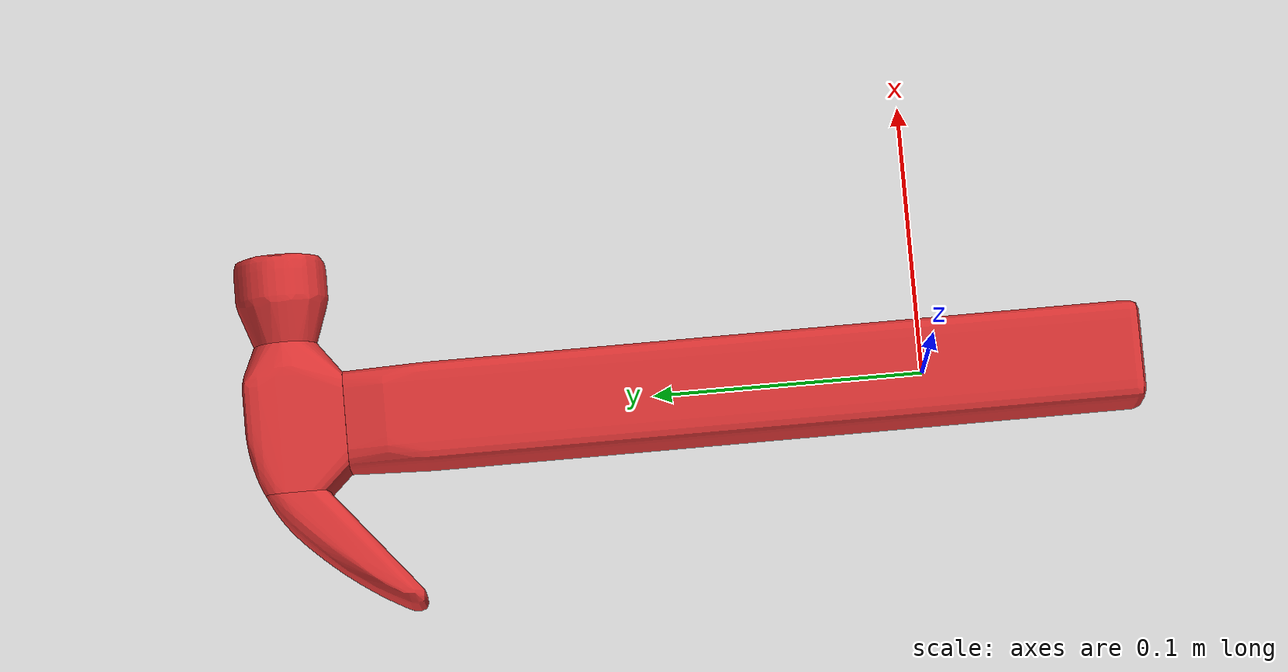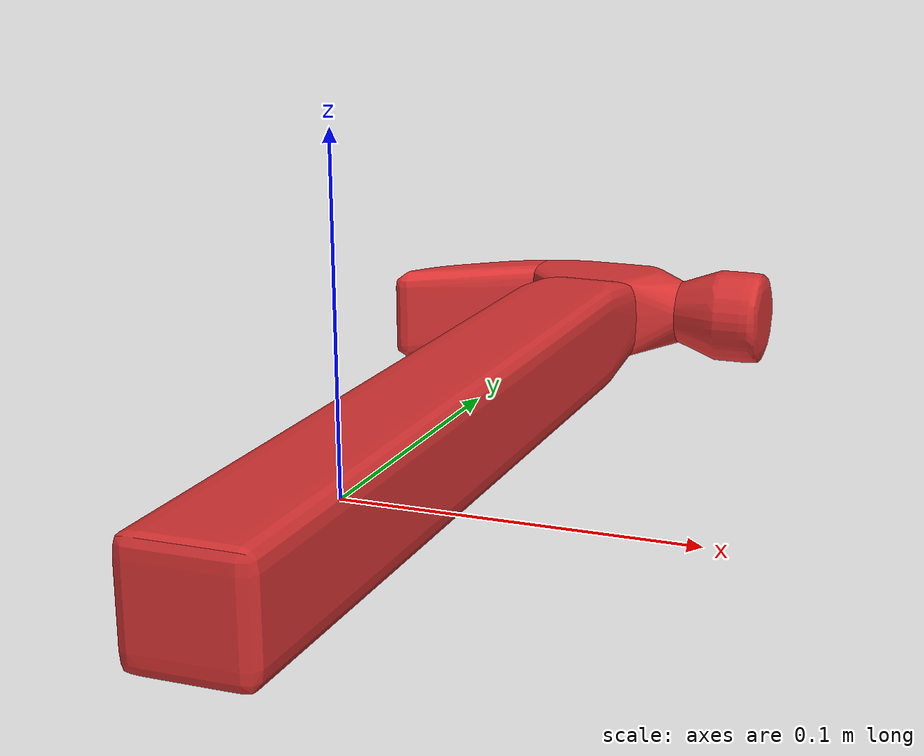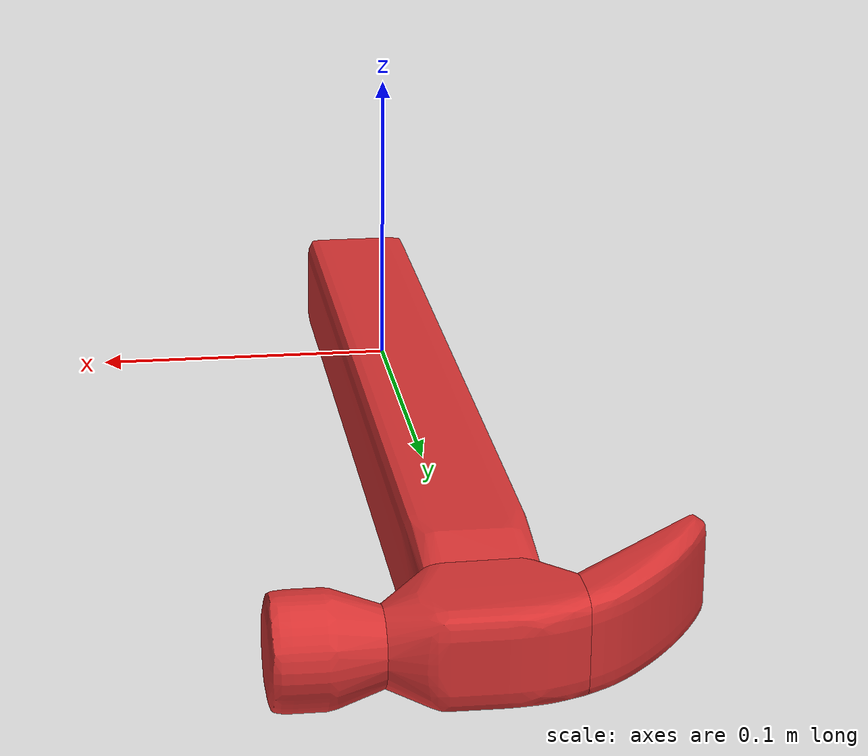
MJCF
<mujoco model="hammer_rect">
  <compiler meshdir="meshes" angle="radian"/>
  <default>
    <default class="visual"><geom contype="0" conaffinity="0" group="2" rgba="0.85 0.2 0.2 1"/></default>
    <default class="collision"><geom group="3"/></default>
  </default>
  <asset>
    <mesh name="hammer_rect_hull0" file="hammer_rect_hull0.obj"/>
    <mesh name="hammer_rect_hull1" file="hammer_rect_hull1.obj"/>
    <mesh name="hammer_rect_hull2" file="hammer_rect_hull2.obj"/>
    <mesh name="hammer_rect_hull3" file="hammer_rect_hull3.obj"/>
  </asset>
  <worldbody>
    <body name="object" pos="0 0 0">
      <freejoint name="object_free"/>
      <geom type="mesh" mesh="hammer_rect_hull0" class="visual"/>
      <geom type="mesh" mesh="hammer_rect_hull1" class="visual"/>
      <geom type="mesh" mesh="hammer_rect_hull2" class="visual"/>
      <geom type="mesh" mesh="hammer_rect_hull3" class="visual"/>
      <geom type="mesh" mesh="hammer_rect_hull0" class="collision"/>
      <geom type="mesh" mesh="hammer_rect_hull1" class="collision"/>
      <geom type="mesh" mesh="hammer_rect_hull2" class="collision"/>
      <geom type="mesh" mesh="hammer_rect_hull3" class="collision"/>
    </body>
  </worldbody>
</mujoco>
